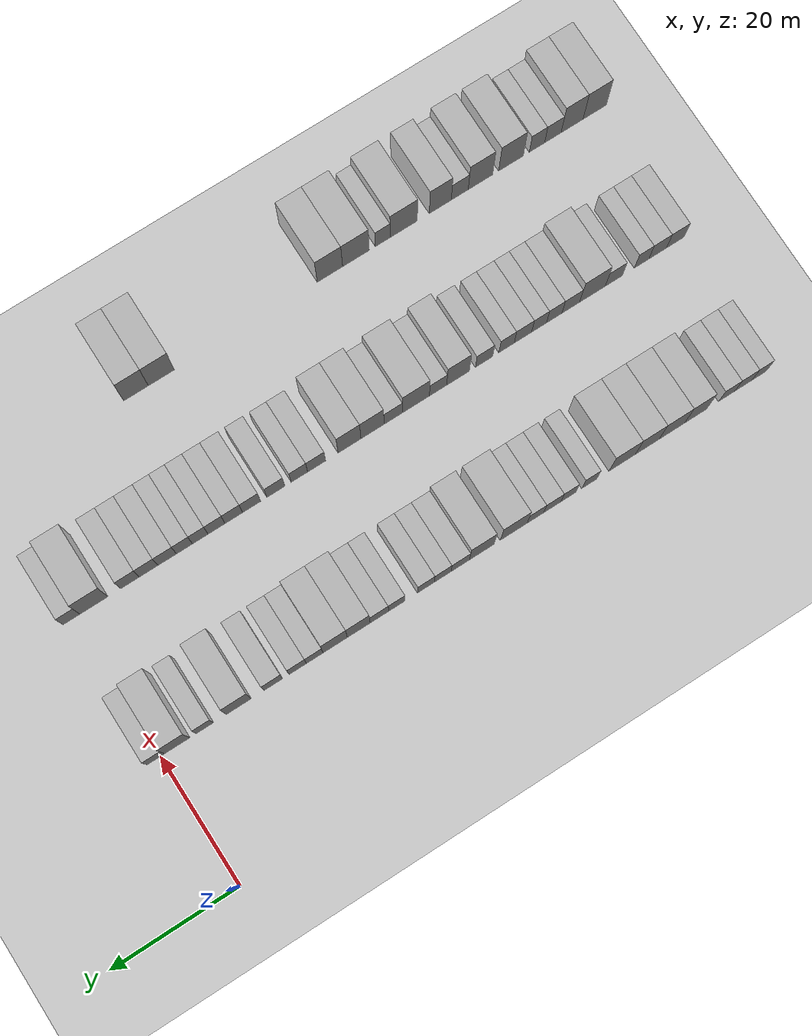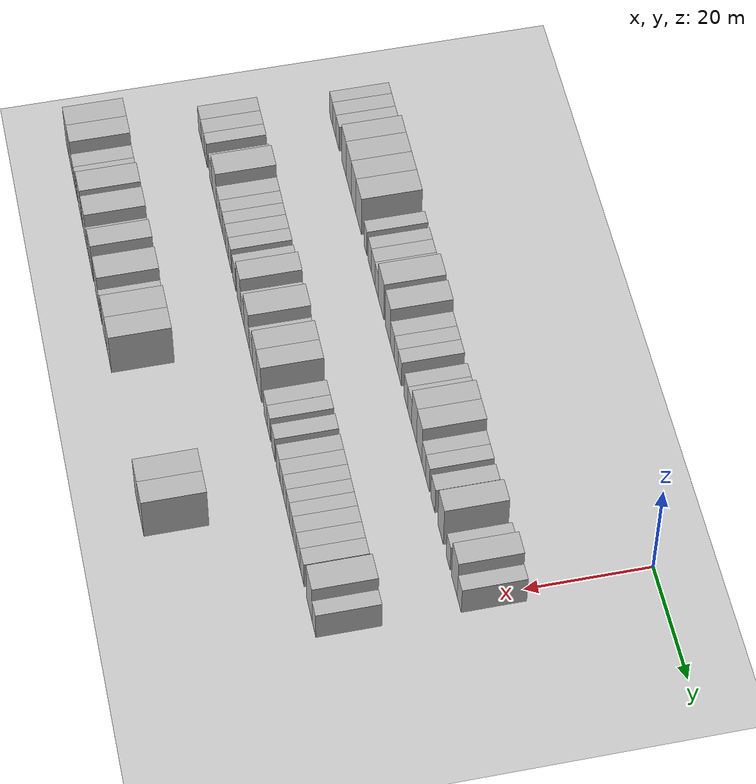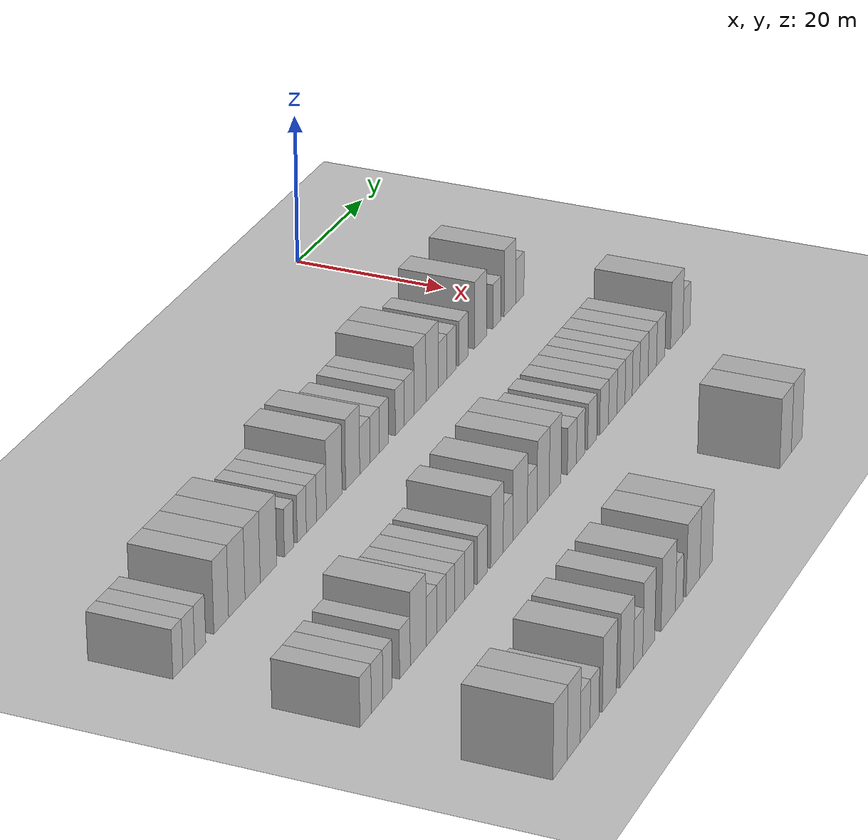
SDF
<sdf version="1.6">
 <world name="default">
  <include><name>ground_plane_1</name><uri>model://HANNAS_ground_plane</uri></include>
  <model name="building_73">
   <static>1</static>
   <pose>25.0000 -96.1927 0 0.000000 0.000000 0.000000</pose>
   <link name="link">
    <pose>0 0 3.00 0 0 0</pose>
    <collision name="collision"><geometry><box><size>10.0000 2.4173 6.0000</size></box></geometry></collision>
    <visual name="visual">
     <cast_shadows>0</cast_shadows>
     <geometry><box><size>10.0000 2.4173 6.0000</size></box></geometry>
     <material>
      <script>
       <uri>model://HANNAS_wall/materials/scripts</uri>
       <uri>model://HANNAS_wall/materials/textures</uri>
       <name>vrc/HANNAS_wall</name>
      </script>
     </material>
    </visual>
   </link>
  </model>
  <model name="building_74">
   <static>1</static>
   <pose>25.0000 -93.5567 0 0.000000 0.000000 0.000000</pose>
   <link name="link">
    <pose>0 0 3.00 0 0 0</pose>
    <collision name="collision"><geometry><box><size>10.0000 2.8549 6.0000</size></box></geometry></collision>
    <visual name="visual">
     <cast_shadows>0</cast_shadows>
     <geometry><box><size>10.0000 2.8549 6.0000</size></box></geometry>
     <material>
      <script>
       <uri>model://HANNAS_wall/materials/scripts</uri>
       <uri>model://HANNAS_wall/materials/textures</uri>
       <name>vrc/HANNAS_wall</name>
      </script>
     </material>
    </visual>
   </link>
  </model>
  <model name="building_75">
   <static>1</static>
   <pose>25.0000 -90.7767 0 0.000000 0.000000 0.000000</pose>
   <link name="link">
    <pose>0 0 3.00 0 0 0</pose>
    <collision name="collision"><geometry><box><size>10.0000 2.7050 6.0000</size></box></geometry></collision>
    <visual name="visual">
     <cast_shadows>0</cast_shadows>
     <geometry><box><size>10.0000 2.7050 6.0000</size></box></geometry>
     <material>
      <script>
       <uri>model://HANNAS_wall/materials/scripts</uri>
       <uri>model://HANNAS_wall/materials/textures</uri>
       <name>vrc/HANNAS_wall</name>
      </script>
     </material>
    </visual>
   </link>
  </model>
  <model name="building_76">
   <static>1</static>
   <pose>25.0000 -85.5886 0 0.000000 0.000000 0.000000</pose>
   <link name="link">
    <pose>0 0 4.50 0 0 0</pose>
    <collision name="collision"><geometry><box><size>10.0000 3.6713 9.0000</size></box></geometry></collision>
    <visual name="visual">
     <cast_shadows>0</cast_shadows>
     <geometry><box><size>10.0000 3.6713 9.0000</size></box></geometry>
     <material>
      <script>
       <uri>model://HANNAS_wall/materials/scripts</uri>
       <uri>model://HANNAS_wall/materials/textures</uri>
       <name>vrc/HANNAS_wall</name>
      </script>
     </material>
    </visual>
   </link>
  </model>
  <model name="building_77">
   <static>1</static>
   <pose>25.0000 -81.6650 0 0.000000 0.000000 0.000000</pose>
   <link name="link">
    <pose>0 0 4.50 0 0 0</pose>
    <collision name="collision"><geometry><box><size>10.0000 4.1760 9.0000</size></box></geometry></collision>
    <visual name="visual">
     <cast_shadows>0</cast_shadows>
     <geometry><box><size>10.0000 4.1760 9.0000</size></box></geometry>
     <material>
      <script>
       <uri>model://HANNAS_wall/materials/scripts</uri>
       <uri>model://HANNAS_wall/materials/textures</uri>
       <name>vrc/HANNAS_wall</name>
      </script>
     </material>
    </visual>
   </link>
  </model>
  <model name="building_78">
   <static>1</static>
   <pose>25.0000 -77.6280 0 0.000000 0.000000 0.000000</pose>
   <link name="link">
    <pose>0 0 4.50 0 0 0</pose>
    <collision name="collision"><geometry><box><size>10.0000 3.8979 9.0000</size></box></geometry></collision>
    <visual name="visual">
     <cast_shadows>0</cast_shadows>
     <geometry><box><size>10.0000 3.8979 9.0000</size></box></geometry>
     <material>
      <script>
       <uri>model://HANNAS_wall/materials/scripts</uri>
       <uri>model://HANNAS_wall/materials/textures</uri>
       <name>vrc/HANNAS_wall</name>
      </script>
     </material>
    </visual>
   </link>
  </model>
  <model name="building_79">
   <static>1</static>
   <pose>25.0000 -73.5222 0 0.000000 0.000000 0.000000</pose>
   <link name="link">
    <pose>0 0 4.50 0 0 0</pose>
    <collision name="collision"><geometry><box><size>10.0000 4.3137 9.0000</size></box></geometry></collision>
    <visual name="visual">
     <cast_shadows>0</cast_shadows>
     <geometry><box><size>10.0000 4.3137 9.0000</size></box></geometry>
     <material>
      <script>
       <uri>model://HANNAS_wall/materials/scripts</uri>
       <uri>model://HANNAS_wall/materials/textures</uri>
       <name>vrc/HANNAS_wall</name>
      </script>
     </material>
    </visual>
   </link>
  </model>
  <model name="building_80">
   <static>1</static>
   <pose>25.0000 -68.1451 0 0.000000 0.000000 0.000000</pose>
   <link name="link">
    <pose>0 0 3.00 0 0 0</pose>
    <collision name="collision"><geometry><box><size>10.0000 2.4406 6.0000</size></box></geometry></collision>
    <visual name="visual">
     <cast_shadows>0</cast_shadows>
     <geometry><box><size>10.0000 2.4406 6.0000</size></box></geometry>
     <material>
      <script>
       <uri>model://HANNAS_wall/materials/scripts</uri>
       <uri>model://HANNAS_wall/materials/textures</uri>
       <name>vrc/HANNAS_wall</name>
      </script>
     </material>
    </visual>
   </link>
  </model>
  <model name="building_81">
   <static>1</static>
   <pose>25.0000 -64.7115 0 0.000000 0.000000 0.000000</pose>
   <link name="link">
    <pose>0 0 3.00 0 0 0</pose>
    <collision name="collision"><geometry><box><size>10.0000 2.4267 6.0000</size></box></geometry></collision>
    <visual name="visual">
     <cast_shadows>0</cast_shadows>
     <geometry><box><size>10.0000 2.4267 6.0000</size></box></geometry>
     <material>
      <script>
       <uri>model://HANNAS_wall/materials/scripts</uri>
       <uri>model://HANNAS_wall/materials/textures</uri>
       <name>vrc/HANNAS_wall</name>
      </script>
     </material>
    </visual>
   </link>
  </model>
  <model name="building_82">
   <static>1</static>
   <pose>25.0000 -62.1145 0 0.000000 0.000000 0.000000</pose>
   <link name="link">
    <pose>0 0 3.00 0 0 0</pose>
    <collision name="collision"><geometry><box><size>10.0000 2.7673 6.0000</size></box></geometry></collision>
    <visual name="visual">
     <cast_shadows>0</cast_shadows>
     <geometry><box><size>10.0000 2.7673 6.0000</size></box></geometry>
     <material>
      <script>
       <uri>model://HANNAS_wall/materials/scripts</uri>
       <uri>model://HANNAS_wall/materials/textures</uri>
       <name>vrc/HANNAS_wall</name>
      </script>
     </material>
    </visual>
   </link>
  </model>
  <model name="building_83">
   <static>1</static>
   <pose>25.0000 -59.3858 0 0.000000 0.000000 0.000000</pose>
   <link name="link">
    <pose>0 0 3.00 0 0 0</pose>
    <collision name="collision"><geometry><box><size>10.0000 2.6900 6.0000</size></box></geometry></collision>
    <visual name="visual">
     <cast_shadows>0</cast_shadows>
     <geometry><box><size>10.0000 2.6900 6.0000</size></box></geometry>
     <material>
      <script>
       <uri>model://HANNAS_wall/materials/scripts</uri>
       <uri>model://HANNAS_wall/materials/textures</uri>
       <name>vrc/HANNAS_wall</name>
      </script>
     </material>
    </visual>
   </link>
  </model>
  <model name="building_84">
   <static>1</static>
   <pose>25.0000 -55.8646 0 0.000000 0.000000 0.000000</pose>
   <link name="link">
    <pose>0 0 4.50 0 0 0</pose>
    <collision name="collision"><geometry><box><size>10.0000 4.3524 9.0000</size></box></geometry></collision>
    <visual name="visual">
     <cast_shadows>0</cast_shadows>
     <geometry><box><size>10.0000 4.3524 9.0000</size></box></geometry>
     <material>
      <script>
       <uri>model://HANNAS_wall/materials/scripts</uri>
       <uri>model://HANNAS_wall/materials/textures</uri>
       <name>vrc/HANNAS_wall</name>
      </script>
     </material>
    </visual>
   </link>
  </model>
  <model name="building_85">
   <static>1</static>
   <pose>25.0000 -50.6956 0 0.000000 0.000000 0.000000</pose>
   <link name="link">
    <pose>0 0 4.50 0 0 0</pose>
    <collision name="collision"><geometry><box><size>10.0000 3.9856 9.0000</size></box></geometry></collision>
    <visual name="visual">
     <cast_shadows>0</cast_shadows>
     <geometry><box><size>10.0000 3.9856 9.0000</size></box></geometry>
     <material>
      <script>
       <uri>model://HANNAS_wall/materials/scripts</uri>
       <uri>model://HANNAS_wall/materials/textures</uri>
       <name>vrc/HANNAS_wall</name>
      </script>
     </material>
    </visual>
   </link>
  </model>
  <model name="building_86">
   <static>1</static>
   <pose>25.0000 -47.2336 0 0.000000 0.000000 0.000000</pose>
   <link name="link">
    <pose>0 0 3.00 0 0 0</pose>
    <collision name="collision"><geometry><box><size>10.0000 2.9383 6.0000</size></box></geometry></collision>
    <visual name="visual">
     <cast_shadows>0</cast_shadows>
     <geometry><box><size>10.0000 2.9383 6.0000</size></box></geometry>
     <material>
      <script>
       <uri>model://HANNAS_wall/materials/scripts</uri>
       <uri>model://HANNAS_wall/materials/textures</uri>
       <name>vrc/HANNAS_wall</name>
      </script>
     </material>
    </visual>
   </link>
  </model>
  <model name="building_87">
   <static>1</static>
   <pose>25.0000 -44.4281 0 0.000000 0.000000 0.000000</pose>
   <link name="link">
    <pose>0 0 3.00 0 0 0</pose>
    <collision name="collision"><geometry><box><size>10.0000 2.6727 6.0000</size></box></geometry></collision>
    <visual name="visual">
     <cast_shadows>0</cast_shadows>
     <geometry><box><size>10.0000 2.6727 6.0000</size></box></geometry>
     <material>
      <script>
       <uri>model://HANNAS_wall/materials/scripts</uri>
       <uri>model://HANNAS_wall/materials/textures</uri>
       <name>vrc/HANNAS_wall</name>
      </script>
     </material>
    </visual>
   </link>
  </model>
  <model name="building_88">
   <static>1</static>
   <pose>25.0000 -41.7447 0 0.000000 0.000000 0.000000</pose>
   <link name="link">
    <pose>0 0 3.00 0 0 0</pose>
    <collision name="collision"><geometry><box><size>10.0000 2.6942 6.0000</size></box></geometry></collision>
    <visual name="visual">
     <cast_shadows>0</cast_shadows>
     <geometry><box><size>10.0000 2.6942 6.0000</size></box></geometry>
     <material>
      <script>
       <uri>model://HANNAS_wall/materials/scripts</uri>
       <uri>model://HANNAS_wall/materials/textures</uri>
       <name>vrc/HANNAS_wall</name>
      </script>
     </material>
    </visual>
   </link>
  </model>
  <model name="building_89">
   <static>1</static>
   <pose>25.0000 -37.0900 0 0.000000 0.000000 0.000000</pose>
   <link name="link">
    <pose>0 0 3.00 0 0 0</pose>
    <collision name="collision"><geometry><box><size>10.0000 2.6150 6.0000</size></box></geometry></collision>
    <visual name="visual">
     <cast_shadows>0</cast_shadows>
     <geometry><box><size>10.0000 2.6150 6.0000</size></box></geometry>
     <material>
      <script>
       <uri>model://HANNAS_wall/materials/scripts</uri>
       <uri>model://HANNAS_wall/materials/textures</uri>
       <name>vrc/HANNAS_wall</name>
      </script>
     </material>
    </visual>
   </link>
  </model>
  <model name="building_90">
   <static>1</static>
   <pose>25.0000 -34.3234 0 0.000000 0.000000 0.000000</pose>
   <link name="link">
    <pose>0 0 3.00 0 0 0</pose>
    <collision name="collision"><geometry><box><size>10.0000 2.9183 6.0000</size></box></geometry></collision>
    <visual name="visual">
     <cast_shadows>0</cast_shadows>
     <geometry><box><size>10.0000 2.9183 6.0000</size></box></geometry>
     <material>
      <script>
       <uri>model://HANNAS_wall/materials/scripts</uri>
       <uri>model://HANNAS_wall/materials/textures</uri>
       <name>vrc/HANNAS_wall</name>
      </script>
     </material>
    </visual>
   </link>
  </model>
  <model name="building_91">
   <static>1</static>
   <pose>25.0000 -31.0584 0 0.000000 0.000000 0.000000</pose>
   <link name="link">
    <pose>0 0 4.50 0 0 0</pose>
    <collision name="collision"><geometry><box><size>10.0000 3.6116 9.0000</size></box></geometry></collision>
    <visual name="visual">
     <cast_shadows>0</cast_shadows>
     <geometry><box><size>10.0000 3.6116 9.0000</size></box></geometry>
     <material>
      <script>
       <uri>model://HANNAS_wall/materials/scripts</uri>
       <uri>model://HANNAS_wall/materials/textures</uri>
       <name>vrc/HANNAS_wall</name>
      </script>
     </material>
    </visual>
   </link>
  </model>
  <model name="building_92">
   <static>1</static>
   <pose>25.0000 -27.3366 0 0.000000 0.000000 0.000000</pose>
   <link name="link">
    <pose>0 0 4.50 0 0 0</pose>
    <collision name="collision"><geometry><box><size>10.0000 3.8321 9.0000</size></box></geometry></collision>
    <visual name="visual">
     <cast_shadows>0</cast_shadows>
     <geometry><box><size>10.0000 3.8321 9.0000</size></box></geometry>
     <material>
      <script>
       <uri>model://HANNAS_wall/materials/scripts</uri>
       <uri>model://HANNAS_wall/materials/textures</uri>
       <name>vrc/HANNAS_wall</name>
      </script>
     </material>
    </visual>
   </link>
  </model>
  <model name="building_93">
   <static>1</static>
   <pose>25.0000 -24.1039 0 0.000000 0.000000 0.000000</pose>
   <link name="link">
    <pose>0 0 3.00 0 0 0</pose>
    <collision name="collision"><geometry><box><size>10.0000 2.6332 6.0000</size></box></geometry></collision>
    <visual name="visual">
     <cast_shadows>0</cast_shadows>
     <geometry><box><size>10.0000 2.6332 6.0000</size></box></geometry>
     <material>
      <script>
       <uri>model://HANNAS_wall/materials/scripts</uri>
       <uri>model://HANNAS_wall/materials/textures</uri>
       <name>vrc/HANNAS_wall</name>
      </script>
     </material>
    </visual>
   </link>
  </model>
  <model name="building_94">
   <static>1</static>
   <pose>25.0000 -21.4226 0 0.000000 0.000000 0.000000</pose>
   <link name="link">
    <pose>0 0 3.00 0 0 0</pose>
    <collision name="collision"><geometry><box><size>10.0000 2.7294 6.0000</size></box></geometry></collision>
    <visual name="visual">
     <cast_shadows>0</cast_shadows>
     <geometry><box><size>10.0000 2.7294 6.0000</size></box></geometry>
     <material>
      <script>
       <uri>model://HANNAS_wall/materials/scripts</uri>
       <uri>model://HANNAS_wall/materials/textures</uri>
       <name>vrc/HANNAS_wall</name>
      </script>
     </material>
    </visual>
   </link>
  </model>
  <model name="building_95">
   <static>1</static>
   <pose>25.0000 -17.5846 0 0.000000 0.000000 0.000000</pose>
   <link name="link">
    <pose>0 0 3.00 0 0 0</pose>
    <collision name="collision"><geometry><box><size>10.0000 2.9466 6.0000</size></box></geometry></collision>
    <visual name="visual">
     <cast_shadows>0</cast_shadows>
     <geometry><box><size>10.0000 2.9466 6.0000</size></box></geometry>
     <material>
      <script>
       <uri>model://HANNAS_wall/materials/scripts</uri>
       <uri>model://HANNAS_wall/materials/textures</uri>
       <name>vrc/HANNAS_wall</name>
      </script>
     </material>
    </visual>
   </link>
  </model>
  <model name="building_96">
   <static>1</static>
   <pose>25.0000 -12.1741 0 0.000000 0.000000 0.000000</pose>
   <link name="link">
    <pose>0 0 4.50 0 0 0</pose>
    <collision name="collision"><geometry><box><size>10.0000 3.8746 9.0000</size></box></geometry></collision>
    <visual name="visual">
     <cast_shadows>0</cast_shadows>
     <geometry><box><size>10.0000 3.8746 9.0000</size></box></geometry>
     <material>
      <script>
       <uri>model://HANNAS_wall/materials/scripts</uri>
       <uri>model://HANNAS_wall/materials/textures</uri>
       <name>vrc/HANNAS_wall</name>
      </script>
     </material>
    </visual>
   </link>
  </model>
  <model name="building_97">
   <static>1</static>
   <pose>25.0000 -6.8939 0 0.000000 0.000000 0.000000</pose>
   <link name="link">
    <pose>0 0 3.00 0 0 0</pose>
    <collision name="collision"><geometry><box><size>10.0000 2.6857 6.0000</size></box></geometry></collision>
    <visual name="visual">
     <cast_shadows>0</cast_shadows>
     <geometry><box><size>10.0000 2.6857 6.0000</size></box></geometry>
     <material>
      <script>
       <uri>model://HANNAS_wall/materials/scripts</uri>
       <uri>model://HANNAS_wall/materials/textures</uri>
       <name>vrc/HANNAS_wall</name>
      </script>
     </material>
    </visual>
   </link>
  </model>
  <model name="building_98">
   <static>1</static>
   <pose>25.0000 -2.6156 0 0.000000 0.000000 0.000000</pose>
   <link name="link">
    <pose>0 0 4.50 0 0 0</pose>
    <collision name="collision"><geometry><box><size>10.0000 3.8708 9.0000</size></box></geometry></collision>
    <visual name="visual">
     <cast_shadows>0</cast_shadows>
     <geometry><box><size>10.0000 3.8708 9.0000</size></box></geometry>
     <material>
      <script>
       <uri>model://HANNAS_wall/materials/scripts</uri>
       <uri>model://HANNAS_wall/materials/textures</uri>
       <name>vrc/HANNAS_wall</name>
      </script>
     </material>
    </visual>
   </link>
  </model>
  <model name="building_99">
   <static>1</static>
   <pose>25.0000 0.6843 0 0.000000 0.000000 0.000000</pose>
   <link name="link">
    <pose>0 0 3.00 0 0 0</pose>
    <collision name="collision"><geometry><box><size>10.0000 2.7291 6.0000</size></box></geometry></collision>
    <visual name="visual">
     <cast_shadows>0</cast_shadows>
     <geometry><box><size>10.0000 2.7291 6.0000</size></box></geometry>
     <material>
      <script>
       <uri>model://HANNAS_wall/materials/scripts</uri>
       <uri>model://HANNAS_wall/materials/textures</uri>
       <name>vrc/HANNAS_wall</name>
      </script>
     </material>
    </visual>
   </link>
  </model>
  <model name="building_272">
   <static>1</static>
   <pose>47.0000 -97.1613 0 0.000000 0.000000 0.000000</pose>
   <link name="link">
    <pose>0 0 3.00 0 0 0</pose>
    <collision name="collision"><geometry><box><size>10.0000 2.9541 6.0000</size></box></geometry></collision>
    <visual name="visual">
     <cast_shadows>0</cast_shadows>
     <geometry><box><size>10.0000 2.9541 6.0000</size></box></geometry>
     <material>
      <script>
       <uri>model://HANNAS_wall/materials/scripts</uri>
       <uri>model://HANNAS_wall/materials/textures</uri>
       <name>vrc/HANNAS_wall</name>
      </script>
     </material>
    </visual>
   </link>
  </model>
  <model name="building_273">
   <static>1</static>
   <pose>47.0000 -94.2004 0 0.000000 0.000000 0.000000</pose>
   <link name="link">
    <pose>0 0 3.00 0 0 0</pose>
    <collision name="collision"><geometry><box><size>10.0000 2.9678 6.0000</size></box></geometry></collision>
    <visual name="visual">
     <cast_shadows>0</cast_shadows>
     <geometry><box><size>10.0000 2.9678 6.0000</size></box></geometry>
     <material>
      <script>
       <uri>model://HANNAS_wall/materials/scripts</uri>
       <uri>model://HANNAS_wall/materials/textures</uri>
       <name>vrc/HANNAS_wall</name>
      </script>
     </material>
    </visual>
   </link>
  </model>
  <model name="building_274">
   <static>1</static>
   <pose>47.0000 -91.5044 0 0.000000 0.000000 0.000000</pose>
   <link name="link">
    <pose>0 0 3.00 0 0 0</pose>
    <collision name="collision"><geometry><box><size>10.0000 2.4241 6.0000</size></box></geometry></collision>
    <visual name="visual">
     <cast_shadows>0</cast_shadows>
     <geometry><box><size>10.0000 2.4241 6.0000</size></box></geometry>
     <material>
      <script>
       <uri>model://HANNAS_wall/materials/scripts</uri>
       <uri>model://HANNAS_wall/materials/textures</uri>
       <name>vrc/HANNAS_wall</name>
      </script>
     </material>
    </visual>
   </link>
  </model>
  <model name="building_275">
   <static>1</static>
   <pose>47.0000 -86.8653 0 0.000000 0.000000 0.000000</pose>
   <link name="link">
    <pose>0 0 3.00 0 0 0</pose>
    <collision name="collision"><geometry><box><size>10.0000 2.8540 6.0000</size></box></geometry></collision>
    <visual name="visual">
     <cast_shadows>0</cast_shadows>
     <geometry><box><size>10.0000 2.8540 6.0000</size></box></geometry>
     <material>
      <script>
       <uri>model://HANNAS_wall/materials/scripts</uri>
       <uri>model://HANNAS_wall/materials/textures</uri>
       <name>vrc/HANNAS_wall</name>
      </script>
     </material>
    </visual>
   </link>
  </model>
  <model name="building_276">
   <static>1</static>
   <pose>47.0000 -83.2970 0 0.000000 0.000000 0.000000</pose>
   <link name="link">
    <pose>0 0 4.50 0 0 0</pose>
    <collision name="collision"><geometry><box><size>10.0000 4.2827 9.0000</size></box></geometry></collision>
    <visual name="visual">
     <cast_shadows>0</cast_shadows>
     <geometry><box><size>10.0000 4.2827 9.0000</size></box></geometry>
     <material>
      <script>
       <uri>model://HANNAS_wall/materials/scripts</uri>
       <uri>model://HANNAS_wall/materials/textures</uri>
       <name>vrc/HANNAS_wall</name>
      </script>
     </material>
    </visual>
   </link>
  </model>
  <model name="building_277">
   <static>1</static>
   <pose>47.0000 -79.6895 0 0.000000 0.000000 0.000000</pose>
   <link name="link">
    <pose>0 0 3.00 0 0 0</pose>
    <collision name="collision"><geometry><box><size>10.0000 2.9322 6.0000</size></box></geometry></collision>
    <visual name="visual">
     <cast_shadows>0</cast_shadows>
     <geometry><box><size>10.0000 2.9322 6.0000</size></box></geometry>
     <material>
      <script>
       <uri>model://HANNAS_wall/materials/scripts</uri>
       <uri>model://HANNAS_wall/materials/textures</uri>
       <name>vrc/HANNAS_wall</name>
      </script>
     </material>
    </visual>
   </link>
  </model>
  <model name="building_278">
   <static>1</static>
   <pose>47.0000 -76.9470 0 0.000000 0.000000 0.000000</pose>
   <link name="link">
    <pose>0 0 3.00 0 0 0</pose>
    <collision name="collision"><geometry><box><size>10.0000 2.5529 6.0000</size></box></geometry></collision>
    <visual name="visual">
     <cast_shadows>0</cast_shadows>
     <geometry><box><size>10.0000 2.5529 6.0000</size></box></geometry>
     <material>
      <script>
       <uri>model://HANNAS_wall/materials/scripts</uri>
       <uri>model://HANNAS_wall/materials/textures</uri>
       <name>vrc/HANNAS_wall</name>
      </script>
     </material>
    </visual>
   </link>
  </model>
  <model name="building_279">
   <static>1</static>
   <pose>47.0000 -74.4429 0 0.000000 0.000000 0.000000</pose>
   <link name="link">
    <pose>0 0 3.00 0 0 0</pose>
    <collision name="collision"><geometry><box><size>10.0000 2.4553 6.0000</size></box></geometry></collision>
    <visual name="visual">
     <cast_shadows>0</cast_shadows>
     <geometry><box><size>10.0000 2.4553 6.0000</size></box></geometry>
     <material>
      <script>
       <uri>model://HANNAS_wall/materials/scripts</uri>
       <uri>model://HANNAS_wall/materials/textures</uri>
       <name>vrc/HANNAS_wall</name>
      </script>
     </material>
    </visual>
   </link>
  </model>
  <model name="building_280">
   <static>1</static>
   <pose>47.0000 -71.7863 0 0.000000 0.000000 0.000000</pose>
   <link name="link">
    <pose>0 0 3.00 0 0 0</pose>
    <collision name="collision"><geometry><box><size>10.0000 2.8579 6.0000</size></box></geometry></collision>
    <visual name="visual">
     <cast_shadows>0</cast_shadows>
     <geometry><box><size>10.0000 2.8579 6.0000</size></box></geometry>
     <material>
      <script>
       <uri>model://HANNAS_wall/materials/scripts</uri>
       <uri>model://HANNAS_wall/materials/textures</uri>
       <name>vrc/HANNAS_wall</name>
      </script>
     </material>
    </visual>
   </link>
  </model>
  <model name="building_281">
   <static>1</static>
   <pose>47.0000 -69.0895 0 0.000000 0.000000 0.000000</pose>
   <link name="link">
    <pose>0 0 3.00 0 0 0</pose>
    <collision name="collision"><geometry><box><size>10.0000 2.5357 6.0000</size></box></geometry></collision>
    <visual name="visual">
     <cast_shadows>0</cast_shadows>
     <geometry><box><size>10.0000 2.5357 6.0000</size></box></geometry>
     <material>
      <script>
       <uri>model://HANNAS_wall/materials/scripts</uri>
       <uri>model://HANNAS_wall/materials/textures</uri>
       <name>vrc/HANNAS_wall</name>
      </script>
     </material>
    </visual>
   </link>
  </model>
  <model name="building_282">
   <static>1</static>
   <pose>47.0000 -65.3941 0 0.000000 0.000000 0.000000</pose>
   <link name="link">
    <pose>0 0 3.00 0 0 0</pose>
    <collision name="collision"><geometry><box><size>10.0000 2.8552 6.0000</size></box></geometry></collision>
    <visual name="visual">
     <cast_shadows>0</cast_shadows>
     <geometry><box><size>10.0000 2.8552 6.0000</size></box></geometry>
     <material>
      <script>
       <uri>model://HANNAS_wall/materials/scripts</uri>
       <uri>model://HANNAS_wall/materials/textures</uri>
       <name>vrc/HANNAS_wall</name>
      </script>
     </material>
    </visual>
   </link>
  </model>
  <model name="building_283">
   <static>1</static>
   <pose>47.0000 -61.1077 0 0.000000 0.000000 0.000000</pose>
   <link name="link">
    <pose>0 0 4.50 0 0 0</pose>
    <collision name="collision"><geometry><box><size>10.0000 3.7175 9.0000</size></box></geometry></collision>
    <visual name="visual">
     <cast_shadows>0</cast_shadows>
     <geometry><box><size>10.0000 3.7175 9.0000</size></box></geometry>
     <material>
      <script>
       <uri>model://HANNAS_wall/materials/scripts</uri>
       <uri>model://HANNAS_wall/materials/textures</uri>
       <name>vrc/HANNAS_wall</name>
      </script>
     </material>
    </visual>
   </link>
  </model>
  <model name="building_284">
   <static>1</static>
   <pose>47.0000 -57.8462 0 0.000000 0.000000 0.000000</pose>
   <link name="link">
    <pose>0 0 3.00 0 0 0</pose>
    <collision name="collision"><geometry><box><size>10.0000 2.8055 6.0000</size></box></geometry></collision>
    <visual name="visual">
     <cast_shadows>0</cast_shadows>
     <geometry><box><size>10.0000 2.8055 6.0000</size></box></geometry>
     <material>
      <script>
       <uri>model://HANNAS_wall/materials/scripts</uri>
       <uri>model://HANNAS_wall/materials/textures</uri>
       <name>vrc/HANNAS_wall</name>
      </script>
     </material>
    </visual>
   </link>
  </model>
  <model name="building_285">
   <static>1</static>
   <pose>47.0000 -54.2455 0 0.000000 0.000000 0.000000</pose>
   <link name="link">
    <pose>0 0 4.50 0 0 0</pose>
    <collision name="collision"><geometry><box><size>10.0000 4.3960 9.0000</size></box></geometry></collision>
    <visual name="visual">
     <cast_shadows>0</cast_shadows>
     <geometry><box><size>10.0000 4.3960 9.0000</size></box></geometry>
     <material>
      <script>
       <uri>model://HANNAS_wall/materials/scripts</uri>
       <uri>model://HANNAS_wall/materials/textures</uri>
       <name>vrc/HANNAS_wall</name>
      </script>
     </material>
    </visual>
   </link>
  </model>
  <model name="building_286">
   <static>1</static>
   <pose>47.0000 -50.5702 0 0.000000 0.000000 0.000000</pose>
   <link name="link">
    <pose>0 0 3.00 0 0 0</pose>
    <collision name="collision"><geometry><box><size>10.0000 2.9545 6.0000</size></box></geometry></collision>
    <visual name="visual">
     <cast_shadows>0</cast_shadows>
     <geometry><box><size>10.0000 2.9545 6.0000</size></box></geometry>
     <material>
      <script>
       <uri>model://HANNAS_wall/materials/scripts</uri>
       <uri>model://HANNAS_wall/materials/textures</uri>
       <name>vrc/HANNAS_wall</name>
      </script>
     </material>
    </visual>
   </link>
  </model>
  <model name="building_287">
   <static>1</static>
   <pose>47.0000 -47.2141 0 0.000000 0.000000 0.000000</pose>
   <link name="link">
    <pose>0 0 4.50 0 0 0</pose>
    <collision name="collision"><geometry><box><size>10.0000 3.7577 9.0000</size></box></geometry></collision>
    <visual name="visual">
     <cast_shadows>0</cast_shadows>
     <geometry><box><size>10.0000 3.7577 9.0000</size></box></geometry>
     <material>
      <script>
       <uri>model://HANNAS_wall/materials/scripts</uri>
       <uri>model://HANNAS_wall/materials/textures</uri>
       <name>vrc/HANNAS_wall</name>
      </script>
     </material>
    </visual>
   </link>
  </model>
  <model name="building_288">
   <static>1</static>
   <pose>47.0000 -43.4943 0 0.000000 0.000000 0.000000</pose>
   <link name="link">
    <pose>0 0 4.50 0 0 0</pose>
    <collision name="collision"><geometry><box><size>10.0000 3.6819 9.0000</size></box></geometry></collision>
    <visual name="visual">
     <cast_shadows>0</cast_shadows>
     <geometry><box><size>10.0000 3.6819 9.0000</size></box></geometry>
     <material>
      <script>
       <uri>model://HANNAS_wall/materials/scripts</uri>
       <uri>model://HANNAS_wall/materials/textures</uri>
       <name>vrc/HANNAS_wall</name>
      </script>
     </material>
    </visual>
   </link>
  </model>
  <model name="building_289">
   <static>1</static>
   <pose>47.0000 -38.2061 0 0.000000 0.000000 0.000000</pose>
   <link name="link">
    <pose>0 0 3.00 0 0 0</pose>
    <collision name="collision"><geometry><box><size>10.0000 2.8946 6.0000</size></box></geometry></collision>
    <visual name="visual">
     <cast_shadows>0</cast_shadows>
     <geometry><box><size>10.0000 2.8946 6.0000</size></box></geometry>
     <material>
      <script>
       <uri>model://HANNAS_wall/materials/scripts</uri>
       <uri>model://HANNAS_wall/materials/textures</uri>
       <name>vrc/HANNAS_wall</name>
      </script>
     </material>
    </visual>
   </link>
  </model>
  <model name="building_290">
   <static>1</static>
   <pose>47.0000 -35.4377 0 0.000000 0.000000 0.000000</pose>
   <link name="link">
    <pose>0 0 3.00 0 0 0</pose>
    <collision name="collision"><geometry><box><size>10.0000 2.6420 6.0000</size></box></geometry></collision>
    <visual name="visual">
     <cast_shadows>0</cast_shadows>
     <geometry><box><size>10.0000 2.6420 6.0000</size></box></geometry>
     <material>
      <script>
       <uri>model://HANNAS_wall/materials/scripts</uri>
       <uri>model://HANNAS_wall/materials/textures</uri>
       <name>vrc/HANNAS_wall</name>
      </script>
     </material>
    </visual>
   </link>
  </model>
  <model name="building_291">
   <static>1</static>
   <pose>47.0000 -31.6760 0 0.000000 0.000000 0.000000</pose>
   <link name="link">
    <pose>0 0 3.00 0 0 0</pose>
    <collision name="collision"><geometry><box><size>10.0000 2.8814 6.0000</size></box></geometry></collision>
    <visual name="visual">
     <cast_shadows>0</cast_shadows>
     <geometry><box><size>10.0000 2.8814 6.0000</size></box></geometry>
     <material>
      <script>
       <uri>model://HANNAS_wall/materials/scripts</uri>
       <uri>model://HANNAS_wall/materials/textures</uri>
       <name>vrc/HANNAS_wall</name>
      </script>
     </material>
    </visual>
   </link>
  </model>
  <model name="building_292">
   <static>1</static>
   <pose>47.0000 -27.7966 0 0.000000 0.000000 0.000000</pose>
   <link name="link">
    <pose>0 0 3.00 0 0 0</pose>
    <collision name="collision"><geometry><box><size>10.0000 2.8774 6.0000</size></box></geometry></collision>
    <visual name="visual">
     <cast_shadows>0</cast_shadows>
     <geometry><box><size>10.0000 2.8774 6.0000</size></box></geometry>
     <material>
      <script>
       <uri>model://HANNAS_wall/materials/scripts</uri>
       <uri>model://HANNAS_wall/materials/textures</uri>
       <name>vrc/HANNAS_wall</name>
      </script>
     </material>
    </visual>
   </link>
  </model>
  <model name="building_293">
   <static>1</static>
   <pose>47.0000 -24.9551 0 0.000000 0.000000 0.000000</pose>
   <link name="link">
    <pose>0 0 3.00 0 0 0</pose>
    <collision name="collision"><geometry><box><size>10.0000 2.8057 6.0000</size></box></geometry></collision>
    <visual name="visual">
     <cast_shadows>0</cast_shadows>
     <geometry><box><size>10.0000 2.8057 6.0000</size></box></geometry>
     <material>
      <script>
       <uri>model://HANNAS_wall/materials/scripts</uri>
       <uri>model://HANNAS_wall/materials/textures</uri>
       <name>vrc/HANNAS_wall</name>
      </script>
     </material>
    </visual>
   </link>
  </model>
  <model name="building_294">
   <static>1</static>
   <pose>47.0000 -22.2027 0 0.000000 0.000000 0.000000</pose>
   <link name="link">
    <pose>0 0 3.00 0 0 0</pose>
    <collision name="collision"><geometry><box><size>10.0000 2.6990 6.0000</size></box></geometry></collision>
    <visual name="visual">
     <cast_shadows>0</cast_shadows>
     <geometry><box><size>10.0000 2.6990 6.0000</size></box></geometry>
     <material>
      <script>
       <uri>model://HANNAS_wall/materials/scripts</uri>
       <uri>model://HANNAS_wall/materials/textures</uri>
       <name>vrc/HANNAS_wall</name>
      </script>
     </material>
    </visual>
   </link>
  </model>
  <model name="building_295">
   <static>1</static>
   <pose>47.0000 -19.6255 0 0.000000 0.000000 0.000000</pose>
   <link name="link">
    <pose>0 0 3.00 0 0 0</pose>
    <collision name="collision"><geometry><box><size>10.0000 2.4555 6.0000</size></box></geometry></collision>
    <visual name="visual">
     <cast_shadows>0</cast_shadows>
     <geometry><box><size>10.0000 2.4555 6.0000</size></box></geometry>
     <material>
      <script>
       <uri>model://HANNAS_wall/materials/scripts</uri>
       <uri>model://HANNAS_wall/materials/textures</uri>
       <name>vrc/HANNAS_wall</name>
      </script>
     </material>
    </visual>
   </link>
  </model>
  <model name="building_296">
   <static>1</static>
   <pose>47.0000 -17.1280 0 0.000000 0.000000 0.000000</pose>
   <link name="link">
    <pose>0 0 3.00 0 0 0</pose>
    <collision name="collision"><geometry><box><size>10.0000 2.5395 6.0000</size></box></geometry></collision>
    <visual name="visual">
     <cast_shadows>0</cast_shadows>
     <geometry><box><size>10.0000 2.5395 6.0000</size></box></geometry>
     <material>
      <script>
       <uri>model://HANNAS_wall/materials/scripts</uri>
       <uri>model://HANNAS_wall/materials/textures</uri>
       <name>vrc/HANNAS_wall</name>
      </script>
     </material>
    </visual>
   </link>
  </model>
  <model name="building_297">
   <static>1</static>
   <pose>47.0000 -14.3954 0 0.000000 0.000000 0.000000</pose>
   <link name="link">
    <pose>0 0 3.00 0 0 0</pose>
    <collision name="collision"><geometry><box><size>10.0000 2.9257 6.0000</size></box></geometry></collision>
    <visual name="visual">
     <cast_shadows>0</cast_shadows>
     <geometry><box><size>10.0000 2.9257 6.0000</size></box></geometry>
     <material>
      <script>
       <uri>model://HANNAS_wall/materials/scripts</uri>
       <uri>model://HANNAS_wall/materials/textures</uri>
       <name>vrc/HANNAS_wall</name>
      </script>
     </material>
    </visual>
   </link>
  </model>
  <model name="building_298">
   <static>1</static>
   <pose>47.0000 -11.4785 0 0.000000 0.000000 0.000000</pose>
   <link name="link">
    <pose>0 0 3.00 0 0 0</pose>
    <collision name="collision"><geometry><box><size>10.0000 2.9081 6.0000</size></box></geometry></collision>
    <visual name="visual">
     <cast_shadows>0</cast_shadows>
     <geometry><box><size>10.0000 2.9081 6.0000</size></box></geometry>
     <material>
      <script>
       <uri>model://HANNAS_wall/materials/scripts</uri>
       <uri>model://HANNAS_wall/materials/textures</uri>
       <name>vrc/HANNAS_wall</name>
      </script>
     </material>
    </visual>
   </link>
  </model>
  <model name="building_299">
   <static>1</static>
   <pose>47.0000 -8.5503 0 0.000000 0.000000 0.000000</pose>
   <link name="link">
    <pose>0 0 3.00 0 0 0</pose>
    <collision name="collision"><geometry><box><size>10.0000 2.9483 6.0000</size></box></geometry></collision>
    <visual name="visual">
     <cast_shadows>0</cast_shadows>
     <geometry><box><size>10.0000 2.9483 6.0000</size></box></geometry>
     <material>
      <script>
       <uri>model://HANNAS_wall/materials/scripts</uri>
       <uri>model://HANNAS_wall/materials/textures</uri>
       <name>vrc/HANNAS_wall</name>
      </script>
     </material>
    </visual>
   </link>
  </model>
  <model name="building_300">
   <static>1</static>
   <pose>47.0000 -2.8903 0 0.000000 0.000000 0.000000</pose>
   <link name="link">
    <pose>0 0 4.50 0 0 0</pose>
    <collision name="collision"><geometry><box><size>10.0000 4.3717 9.0000</size></box></geometry></collision>
    <visual name="visual">
     <cast_shadows>0</cast_shadows>
     <geometry><box><size>10.0000 4.3717 9.0000</size></box></geometry>
     <material>
      <script>
       <uri>model://HANNAS_wall/materials/scripts</uri>
       <uri>model://HANNAS_wall/materials/textures</uri>
       <name>vrc/HANNAS_wall</name>
      </script>
     </material>
    </visual>
   </link>
  </model>
  <model name="building_301">
   <static>1</static>
   <pose>47.0000 0.6193 0 0.000000 0.000000 0.000000</pose>
   <link name="link">
    <pose>0 0 3.00 0 0 0</pose>
    <collision name="collision"><geometry><box><size>10.0000 2.6474 6.0000</size></box></geometry></collision>
    <visual name="visual">
     <cast_shadows>0</cast_shadows>
     <geometry><box><size>10.0000 2.6474 6.0000</size></box></geometry>
     <material>
      <script>
       <uri>model://HANNAS_wall/materials/scripts</uri>
       <uri>model://HANNAS_wall/materials/textures</uri>
       <name>vrc/HANNAS_wall</name>
      </script>
     </material>
    </visual>
   </link>
  </model>
  <model name="building_471">
   <static>1</static>
   <pose>69.0000 -98.3387 0 0.000000 0.000000 0.000000</pose>
   <link name="link">
    <pose>0 0 4.50 0 0 0</pose>
    <collision name="collision"><geometry><box><size>10.0000 3.9491 9.0000</size></box></geometry></collision>
    <visual name="visual">
     <cast_shadows>0</cast_shadows>
     <geometry><box><size>10.0000 3.9491 9.0000</size></box></geometry>
     <material>
      <script>
       <uri>model://HANNAS_wall/materials/scripts</uri>
       <uri>model://HANNAS_wall/materials/textures</uri>
       <name>vrc/HANNAS_wall</name>
      </script>
     </material>
    </visual>
   </link>
  </model>
  <model name="building_472">
   <static>1</static>
   <pose>69.0000 -94.5074 0 0.000000 0.000000 0.000000</pose>
   <link name="link">
    <pose>0 0 4.50 0 0 0</pose>
    <collision name="collision"><geometry><box><size>10.0000 3.7136 9.0000</size></box></geometry></collision>
    <visual name="visual">
     <cast_shadows>0</cast_shadows>
     <geometry><box><size>10.0000 3.7136 9.0000</size></box></geometry>
     <material>
      <script>
       <uri>model://HANNAS_wall/materials/scripts</uri>
       <uri>model://HANNAS_wall/materials/textures</uri>
       <name>vrc/HANNAS_wall</name>
      </script>
     </material>
    </visual>
   </link>
  </model>
  <model name="building_473">
   <static>1</static>
   <pose>69.0000 -91.2615 0 0.000000 0.000000 0.000000</pose>
   <link name="link">
    <pose>0 0 3.00 0 0 0</pose>
    <collision name="collision"><geometry><box><size>10.0000 2.7782 6.0000</size></box></geometry></collision>
    <visual name="visual">
     <cast_shadows>0</cast_shadows>
     <geometry><box><size>10.0000 2.7782 6.0000</size></box></geometry>
     <material>
      <script>
       <uri>model://HANNAS_wall/materials/scripts</uri>
       <uri>model://HANNAS_wall/materials/textures</uri>
       <name>vrc/HANNAS_wall</name>
      </script>
     </material>
    </visual>
   </link>
  </model>
  <model name="building_474">
   <static>1</static>
   <pose>69.0000 -88.5812 0 0.000000 0.000000 0.000000</pose>
   <link name="link">
    <pose>0 0 3.00 0 0 0</pose>
    <collision name="collision"><geometry><box><size>10.0000 2.5824 6.0000</size></box></geometry></collision>
    <visual name="visual">
     <cast_shadows>0</cast_shadows>
     <geometry><box><size>10.0000 2.5824 6.0000</size></box></geometry>
     <material>
      <script>
       <uri>model://HANNAS_wall/materials/scripts</uri>
       <uri>model://HANNAS_wall/materials/textures</uri>
       <name>vrc/HANNAS_wall</name>
      </script>
     </material>
    </visual>
   </link>
  </model>
  <model name="building_475">
   <static>1</static>
   <pose>69.0000 -84.2193 0 0.000000 0.000000 0.000000</pose>
   <link name="link">
    <pose>0 0 4.50 0 0 0</pose>
    <collision name="collision"><geometry><box><size>10.0000 4.1414 9.0000</size></box></geometry></collision>
    <visual name="visual">
     <cast_shadows>0</cast_shadows>
     <geometry><box><size>10.0000 4.1414 9.0000</size></box></geometry>
     <material>
      <script>
       <uri>model://HANNAS_wall/materials/scripts</uri>
       <uri>model://HANNAS_wall/materials/textures</uri>
       <name>vrc/HANNAS_wall</name>
      </script>
     </material>
    </visual>
   </link>
  </model>
  <model name="building_476">
   <static>1</static>
   <pose>69.0000 -79.1066 0 0.000000 0.000000 0.000000</pose>
   <link name="link">
    <pose>0 0 4.50 0 0 0</pose>
    <collision name="collision"><geometry><box><size>10.0000 4.0840 9.0000</size></box></geometry></collision>
    <visual name="visual">
     <cast_shadows>0</cast_shadows>
     <geometry><box><size>10.0000 4.0840 9.0000</size></box></geometry>
     <material>
      <script>
       <uri>model://HANNAS_wall/materials/scripts</uri>
       <uri>model://HANNAS_wall/materials/textures</uri>
       <name>vrc/HANNAS_wall</name>
      </script>
     </material>
    </visual>
   </link>
  </model>
  <model name="building_477">
   <static>1</static>
   <pose>69.0000 -75.6492 0 0.000000 0.000000 0.000000</pose>
   <link name="link">
    <pose>0 0 3.00 0 0 0</pose>
    <collision name="collision"><geometry><box><size>10.0000 2.8308 6.0000</size></box></geometry></collision>
    <visual name="visual">
     <cast_shadows>0</cast_shadows>
     <geometry><box><size>10.0000 2.8308 6.0000</size></box></geometry>
     <material>
      <script>
       <uri>model://HANNAS_wall/materials/scripts</uri>
       <uri>model://HANNAS_wall/materials/textures</uri>
       <name>vrc/HANNAS_wall</name>
      </script>
     </material>
    </visual>
   </link>
  </model>
  <model name="building_478">
   <static>1</static>
   <pose>69.0000 -72.4090 0 0.000000 0.000000 0.000000</pose>
   <link name="link">
    <pose>0 0 4.50 0 0 0</pose>
    <collision name="collision"><geometry><box><size>10.0000 3.6496 9.0000</size></box></geometry></collision>
    <visual name="visual">
     <cast_shadows>0</cast_shadows>
     <geometry><box><size>10.0000 3.6496 9.0000</size></box></geometry>
     <material>
      <script>
       <uri>model://HANNAS_wall/materials/scripts</uri>
       <uri>model://HANNAS_wall/materials/textures</uri>
       <name>vrc/HANNAS_wall</name>
      </script>
     </material>
    </visual>
   </link>
  </model>
  <model name="building_479">
   <static>1</static>
   <pose>69.0000 -66.3474 0 0.000000 0.000000 0.000000</pose>
   <link name="link">
    <pose>0 0 4.50 0 0 0</pose>
    <collision name="collision"><geometry><box><size>10.0000 4.4738 9.0000</size></box></geometry></collision>
    <visual name="visual">
     <cast_shadows>0</cast_shadows>
     <geometry><box><size>10.0000 4.4738 9.0000</size></box></geometry>
     <material>
      <script>
       <uri>model://HANNAS_wall/materials/scripts</uri>
       <uri>model://HANNAS_wall/materials/textures</uri>
       <name>vrc/HANNAS_wall</name>
      </script>
     </material>
    </visual>
   </link>
  </model>
  <model name="building_480">
   <static>1</static>
   <pose>69.0000 -62.8870 0 0.000000 0.000000 0.000000</pose>
   <link name="link">
    <pose>0 0 3.00 0 0 0</pose>
    <collision name="collision"><geometry><box><size>10.0000 2.4469 6.0000</size></box></geometry></collision>
    <visual name="visual">
     <cast_shadows>0</cast_shadows>
     <geometry><box><size>10.0000 2.4469 6.0000</size></box></geometry>
     <material>
      <script>
       <uri>model://HANNAS_wall/materials/scripts</uri>
       <uri>model://HANNAS_wall/materials/textures</uri>
       <name>vrc/HANNAS_wall</name>
      </script>
     </material>
    </visual>
   </link>
  </model>
  <model name="building_481">
   <static>1</static>
   <pose>69.0000 -58.4726 0 0.000000 0.000000 0.000000</pose>
   <link name="link">
    <pose>0 0 4.50 0 0 0</pose>
    <collision name="collision"><geometry><box><size>10.0000 4.3820 9.0000</size></box></geometry></collision>
    <visual name="visual">
     <cast_shadows>0</cast_shadows>
     <geometry><box><size>10.0000 4.3820 9.0000</size></box></geometry>
     <material>
      <script>
       <uri>model://HANNAS_wall/materials/scripts</uri>
       <uri>model://HANNAS_wall/materials/textures</uri>
       <name>vrc/HANNAS_wall</name>
      </script>
     </material>
    </visual>
   </link>
  </model>
  <model name="building_482">
   <static>1</static>
   <pose>69.0000 -54.1978 0 0.000000 0.000000 0.000000</pose>
   <link name="link">
    <pose>0 0 4.50 0 0 0</pose>
    <collision name="collision"><geometry><box><size>10.0000 4.1676 9.0000</size></box></geometry></collision>
    <visual name="visual">
     <cast_shadows>0</cast_shadows>
     <geometry><box><size>10.0000 4.1676 9.0000</size></box></geometry>
     <material>
      <script>
       <uri>model://HANNAS_wall/materials/scripts</uri>
       <uri>model://HANNAS_wall/materials/textures</uri>
       <name>vrc/HANNAS_wall</name>
      </script>
     </material>
    </visual>
   </link>
  </model>
  <model name="building_483">
   <static>1</static>
   <pose>69.0000 -26.8342 0 0.000000 0.000000 0.000000</pose>
   <link name="link">
    <pose>0 0 4.50 0 0 0</pose>
    <collision name="collision"><geometry><box><size>10.0000 4.1865 9.0000</size></box></geometry></collision>
    <visual name="visual">
     <cast_shadows>0</cast_shadows>
     <geometry><box><size>10.0000 4.1865 9.0000</size></box></geometry>
     <material>
      <script>
       <uri>model://HANNAS_wall/materials/scripts</uri>
       <uri>model://HANNAS_wall/materials/textures</uri>
       <name>vrc/HANNAS_wall</name>
      </script>
     </material>
    </visual>
   </link>
  </model>
  <model name="building_484">
   <static>1</static>
   <pose>69.0000 -22.7677 0 0.000000 0.000000 0.000000</pose>
   <link name="link">
    <pose>0 0 4.50 0 0 0</pose>
    <collision name="collision"><geometry><box><size>10.0000 3.9465 9.0000</size></box></geometry></collision>
    <visual name="visual">
     <cast_shadows>0</cast_shadows>
     <geometry><box><size>10.0000 3.9465 9.0000</size></box></geometry>
     <material>
      <script>
       <uri>model://HANNAS_wall/materials/scripts</uri>
       <uri>model://HANNAS_wall/materials/textures</uri>
       <name>vrc/HANNAS_wall</name>
      </script>
     </material>
    </visual>
   </link>
  </model>
 </world>
</sdf>
